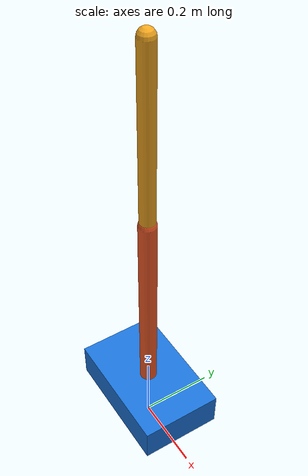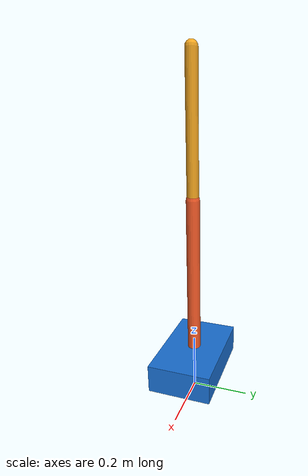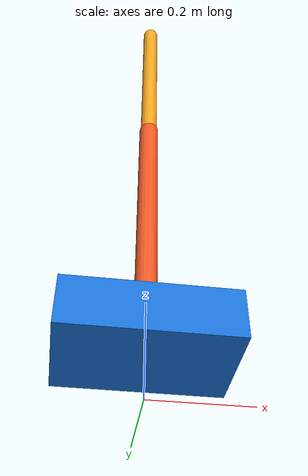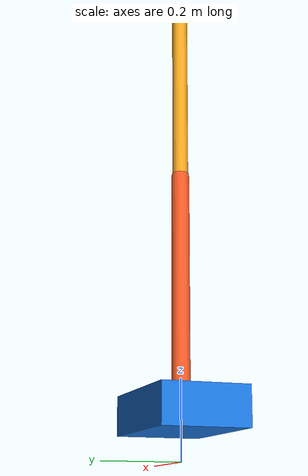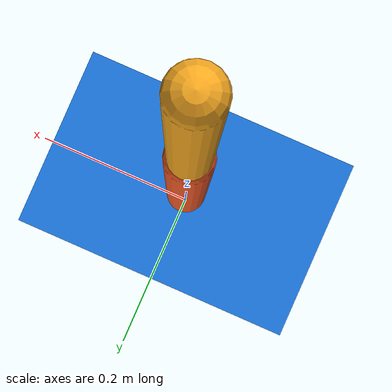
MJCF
<mujoco model="genelab_double_inverted_pendulum">
  <option timestep="0.005" gravity="0 0 -9.81" integrator="implicitfast"/>
  <default>
    <joint armature="0" damping="0"/>
    <geom contype="0" conaffinity="0"/>
  </default>
  <worldbody>
    <body name="cart" pos="0 0 0.12">
      <joint name="cart_slide" type="slide" axis="1 0 0" range="-3.0 3.0" damping="0.05"/>
      <geom name="cart_box" type="box" size="0.17 0.11 0.05" mass="1.0"
            rgba="0.10 0.45 0.85 1" contype="2" conaffinity="2"/>
      <body name="pole_1" pos="0 0 0.05">
        <joint name="pole_1_hinge" type="hinge" axis="0 1 0" range="-1.2 1.2" damping="0.002"/>
        <geom name="pole_1_capsule" type="capsule" fromto="0 0 0 0 0 0.55" size="0.023"
              mass="0.1" rgba="0.95 0.35 0.15 1" contype="4" conaffinity="4"/>
        <body name="pole_2" pos="0 0 0.55">
          <joint name="pole_2_hinge" type="hinge" axis="0 1 0" range="-1.5 1.5" damping="0.002"/>
          <geom name="pole_2_capsule" type="capsule" fromto="0 0 0 0 0 0.45" size="0.020"
                mass="0.08" rgba="0.95 0.65 0.12 1" contype="8" conaffinity="8"/>
        </body>
      </body>
    </body>
  </worldbody>
  <actuator>
    <motor name="cart_force" joint="cart_slide" gear="1"/>
  </actuator>
</mujoco>
